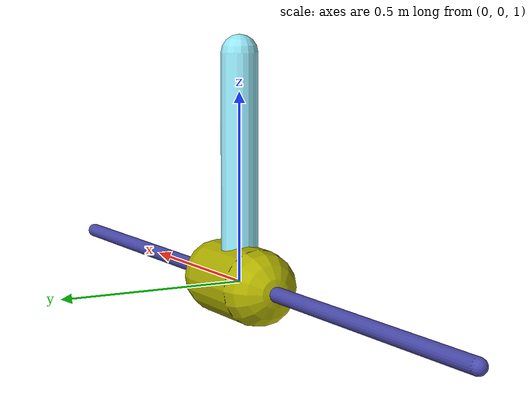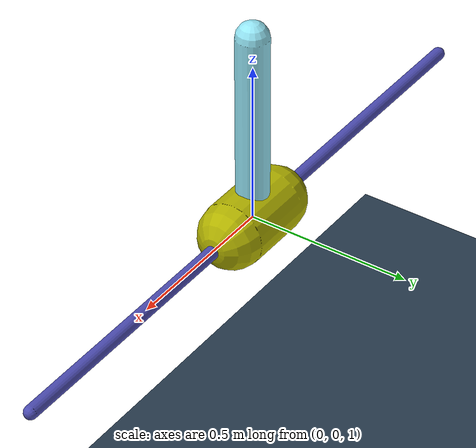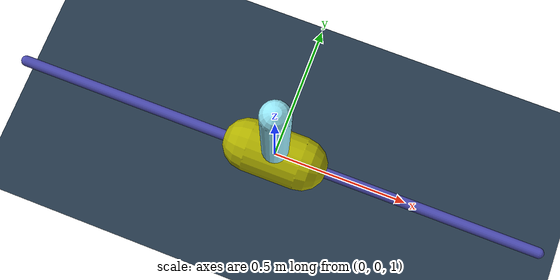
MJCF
<mujoco model="inverted pendulum">
    <include file="../world.xml"/>
    <compiler inertiafromgeom="true"/>
    <default>
        <joint armature="0" damping="1" limited="true"/>
        <geom contype="0" friction="1 0.1 0.1"/>
        <tendon/>
        <motor ctrlrange="-3 3"/>
    </default>
    <option gravity="0 0 -9.81" integrator="Euler"/>
    <size nstack="3000"/>
    <worldbody>
        <geom name="rail" pos="0 0 1" quat="0.707 0 0.707 0" rgba="0.3 0.3 0.7 1" size="0.02 1" type="capsule"/>
        <body name="cart" pos="0 0 1">
            <joint axis="1 0 0" limited="true" name="slider" pos="0 0 0" range="-1 1" type="slide"/>
            <geom name="cart" pos="0 0 0" quat="0.707 0 0.707 0" size="0.1 0.1" type="capsule" rgba="0.7 0.7 0 1"/>
            <body name="pole" pos="0 0 0">
                <joint axis="0 1 0" name="revolute" pos="0 0 0" limited="false" type="hinge"/>
                <geom fromto="0 0 0 0.001 0 0.6" name="cpole" rgba="0.588 0.909 0.972 1" size="0.049 0.3" type="capsule"/>
            </body>
        </body>
    </worldbody>
    <actuator>
            <motor gear="100" joint="slider" name="slide"/>
    </actuator>
</mujoco>

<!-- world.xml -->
<!-- ======================================================
    Model: Empty World
    Mujoco Version: 2.0.x
	Author: Jianfeng Gao
====================================================== -->

<mujoco>
    <statistic extent="2" meansize=".05"/>

    <option timestep="0.005" solver="Newton" iterations="30" tolerance="1e-10" jacobian="sparse" cone="pyramidal"/>

    <visual>
        <rgba haze="0.15 0.25 0.35 1"/>
        <quality shadowsize="2048"/>
        <map stiffness="700" shadowscale="0.5" fogstart="10" fogend="15" zfar="40" haze="0.3"/>
    </visual>

    <asset>
        <texture type="skybox" builtin="gradient" rgb1="0.3 0.5 0.7" rgb2="0 0 0" width="512" height="512"/>
        <texture name="texplane" type="2d" builtin="checker" rgb1=".2 .3 .4" rgb2=".1 0.15 0.2"
            width="512" height="512" mark="cross" markrgb=".8 .8 .8"/>
        <material name="matplane" reflectance="0.3" texture="texplane" texrepeat="1 1" texuniform="true"/>
    </asset>

    <worldbody>
        <light directional="true" diffuse=".4 .4 .4" specular="0.1 0.1 0.1" pos="0 0 5.0" dir="0 0 -1" castshadow="false"/>
        <light directional="true" diffuse=".6 .6 .6" specular="0.2 0.2 0.2" pos="0 0 4" dir="0 0 -1"/>

        <geom name="ground" type="plane" size="0 0 1" pos="0 0 0" quat="1 0 0 0" material="matplane" condim="1"/>

    </worldbody>
</mujoco>
